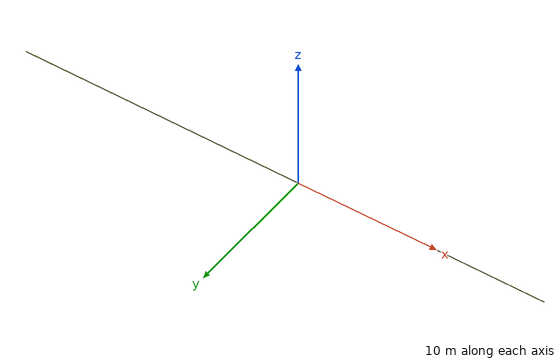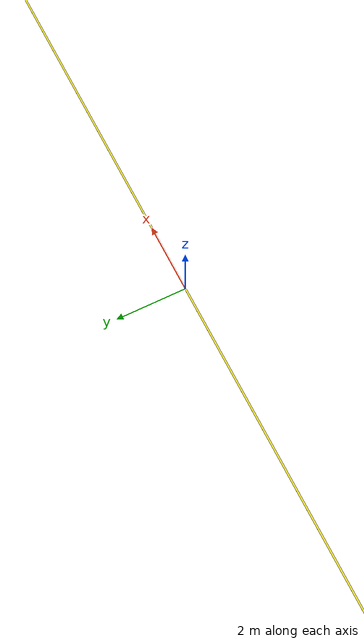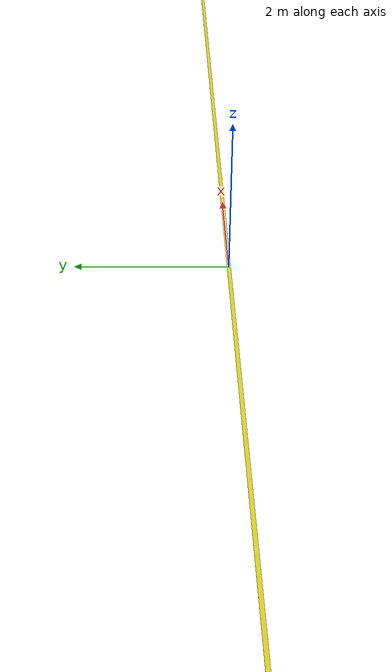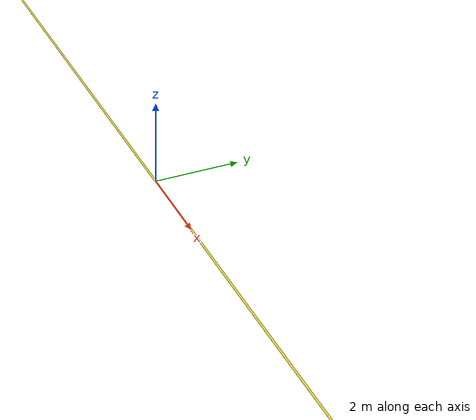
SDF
<?xml version='1.0'?>
<sdf version='1.6'>
  <model name='line3640cm'>
    <link name='link_4'>
      <inertial>
        <mass>1</mass>
        <inertia>
          <ixx>0.166667</ixx>
          <ixy>0</ixy>
          <ixz>0</ixz>
          <iyy>0.166667</iyy>
          <iyz>0</iyz>
          <izz>0.166667</izz>
        </inertia>
        <pose frame=''>0 0 0 0 -0 0</pose>
      </inertial>
      <pose frame=''>0 0 0 0 -0 0</pose>
      <gravity>1</gravity>
      <self_collide>0</self_collide>
      <kinematic>0</kinematic>
      <enable_wind>0</enable_wind>
      <visual name='visual'>
        <pose frame=''>0 0 0 0 -0 1.570796</pose>
        <geometry>
          <box>
            <size>0.05 36.4 0.001</size>
          </box>
        </geometry>
        <material>
          <lighting>1</lighting>
          <script>
            <uri>file://media/materials/scripts/gazebo.material</uri>
            <name>Gazebo/Yellow</name>
          </script>
        </material>
      </visual>
      <collision name='collision'>
        <laser_retro>0</laser_retro>
        <max_contacts>10</max_contacts>
        <pose frame=''>0 0 0 0 -0 1.570796</pose>
        <geometry>
          <box>
            <size>0.05 36.4 1e-05</size>
          </box>
        </geometry>
        <surface>
          <friction>
            <ode>
              <mu>1</mu>
              <mu2>1</mu2>
              <fdir1>0 0 0</fdir1>
              <slip1>0</slip1>
              <slip2>0</slip2>
            </ode>
            <torsional>
              <coefficient>1</coefficient>
              <patch_radius>0</patch_radius>
              <surface_radius>0</surface_radius>
              <use_patch_radius>1</use_patch_radius>
              <ode>
                <slip>0</slip>
              </ode>
            </torsional>
          </friction>
          <bounce>
            <restitution_coefficient>0</restitution_coefficient>
            <threshold>1e+06</threshold>
          </bounce>
          <contact>
            <collide_without_contact>0</collide_without_contact>
            <collide_without_contact_bitmask>1</collide_without_contact_bitmask>
            <collide_bitmask>1</collide_bitmask>
            <ode>
              <soft_cfm>0</soft_cfm>
              <soft_erp>0.2</soft_erp>
              <kp>1e+13</kp>
              <kd>1</kd>
              <max_vel>0.01</max_vel>
              <min_depth>0</min_depth>
            </ode>
            <bullet>
              <split_impulse>1</split_impulse>
              <split_impulse_penetration_threshold>-0.01</split_impulse_penetration_threshold>
              <soft_cfm>0</soft_cfm>
              <soft_erp>0.2</soft_erp>
              <kp>1e+13</kp>
              <kd>1</kd>
            </bullet>
          </contact>
        </surface>
      </collision>
    </link>
    <static>1</static>
    <allow_auto_disable>1</allow_auto_disable>
  </model>
</sdf>
